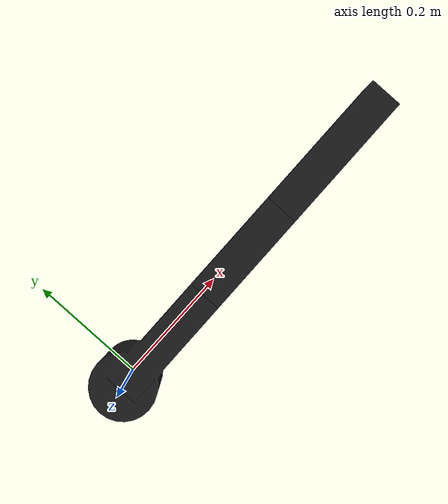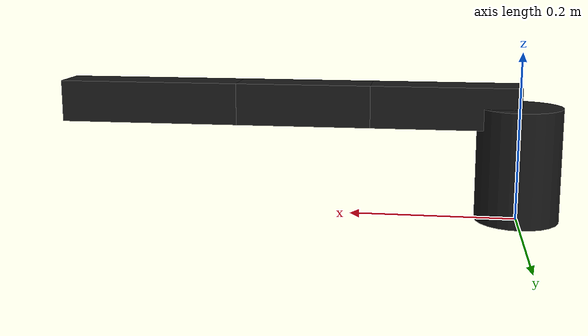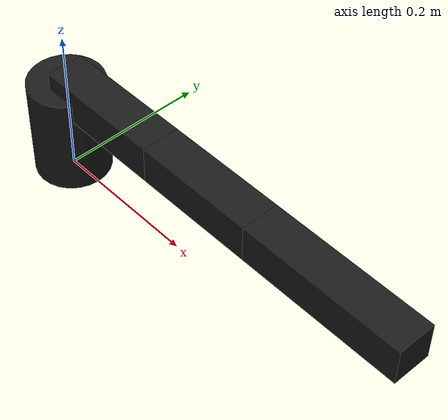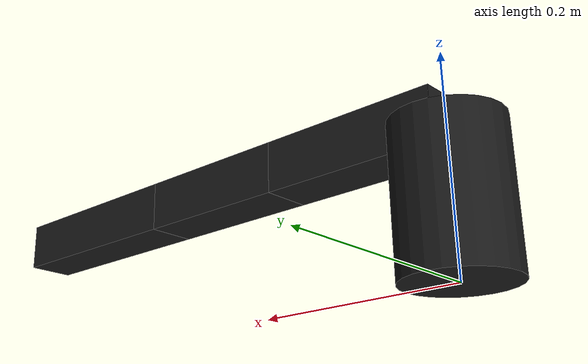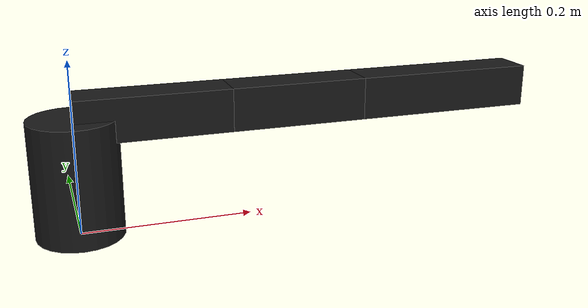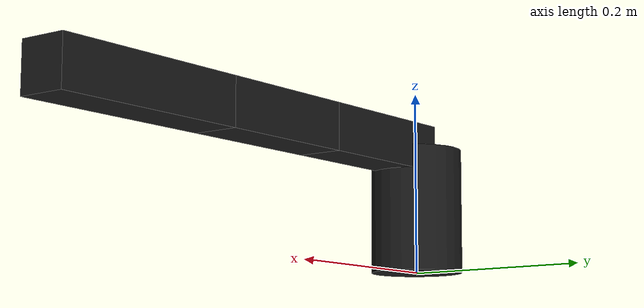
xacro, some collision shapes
<?xml version="1.0"?>
<robot xmlns:xacro="http://www.ros.org/wiki/xacro" name="rover_arm">

    <!-- Constants for robot dimensions -->
    <xacro:property name="PI" value="3.1415926535897931"/>

    <!-- Link lengths -->
    <xacro:property name="base_height" value="0.1364"/>
    <xacro:property name="link1_length" value="0.1752"/>
    <xacro:property name="link2_length" value="0.1608"/>
    <xacro:property name="link3_length" value="0.2182"/>

    <!-- Masses -->
    <xacro:property name="base_mass" value="0.650"/>
    <xacro:property name="link1_mass" value="0.220"/>
    <xacro:property name="link2_mass" value="0.200"/>
    <xacro:property name="link3_mass" value="0.250"/>
    <xacro:property name="end_effector_mass" value="0.140"/>

    <!-- Materials -->
    <material name="black">
        <color rgba="0.1 0.1 0.1 1"/>
    </material>

    <!-- Base Link -->
    <link name="base_link">
        <visual>
            <origin xyz="0 0 ${base_height/2}" rpy="0 0 0"/>
            <geometry>
                <mesh filename="file://$(find install)/rover_arm_description/share/rover_arm_description/urdf/obj/base.stl" scale="1 1 1"/>
            </geometry>
            <material name="black"/>
        </visual>
        <collision>
            <origin xyz="0 0 ${base_height/2}" rpy="0 0 0"/>
            <geometry>
                <cylinder radius="0.05" length="${base_height}"/>
            </geometry>
        </collision>
        <inertial>
            <origin xyz="0 0 ${base_height/2}" rpy="0 0 0"/>
            <mass value="${base_mass}"/>
            <inertia ixx="0.001" ixy="0.0" ixz="0.0" iyy="0.001" iyz="0.0" izz="0.001"/>
        </inertial>
    </link>

    <!-- Joint 1: Base rotation -->
    <joint name="joint1" type="revolute">
        <parent link="base_link"/>
        <child link="link1"/>
        <origin xyz="0 0 ${base_height}" rpy="0 0 0"/>
        <axis xyz="0 0 1"/>
        <limit lower="${-PI}" upper="${PI}" effort="100" velocity="1.0"/>
    </joint>

    <!-- Link 1 -->
    <link name="link1">
        <visual>
            <origin xyz="${link1_length/2} 0 0" rpy="0 0 0"/>
            <geometry>
                <box size="${link1_length} 0.05 0.05"/>
            </geometry>
            <material name="black"/>
        </visual>
        <collision>
            <origin xyz="${link1_length/2} 0 0" rpy="0 0 0"/>
            <geometry>
                <box size="${link1_length} 0.05 0.05"/>
            </geometry>
        </collision>
        <inertial>
            <origin xyz="${link1_length/2} 0 0" rpy="0 0 0"/>
            <mass value="${link1_mass}"/>
            <inertia ixx="0.001" ixy="0.0" ixz="0.0" iyy="0.001" iyz="0.0" izz="0.001"/>
        </inertial>
    </link>

    <!-- Joint 2 -->
    <joint name="joint2" type="revolute">
        <parent link="link1"/>
        <child link="link2"/>
        <origin xyz="${link1_length} 0 0" rpy="0 0 0"/>
        <axis xyz="0 1 0"/>
        <limit lower="${-PI/2}" upper="${PI/2}" effort="100" velocity="1.0"/>
    </joint>

    <!-- Link 2 -->
    <link name="link2">
        <visual>
            <origin xyz="${link2_length/2} 0 0" rpy="0 0 0"/>
            <geometry>
                <box size="${link2_length} 0.05 0.05"/>
            </geometry>
            <material name="black"/>
        </visual>
        <collision>
            <origin xyz="${link2_length/2} 0 0" rpy="0 0 0"/>
            <geometry>
                <box size="${link2_length} 0.05 0.05"/>
            </geometry>
        </collision>
        <inertial>
            <origin xyz="${link2_length/2} 0 0" rpy="0 0 0"/>
            <mass value="${link2_mass}"/>
            <inertia ixx="0.001" ixy="0.0" ixz="0.0" iyy="0.001" iyz="0.0" izz="0.001"/>
        </inertial>
    </link>

    <!-- Joint 3 -->
    <joint name="joint3" type="revolute">
        <parent link="link2"/>
        <child link="link3"/>
        <origin xyz="${link2_length} 0 0" rpy="0 0 0"/>
        <axis xyz="0 1 0"/>
        <limit lower="${-PI/2}" upper="${PI/2}" effort="100" velocity="1.0"/>
    </joint>

    <!-- Link 3 -->
    <link name="link3">
        <visual>
            <origin xyz="${link3_length/2} 0 0" rpy="0 0 0"/>
            <geometry>
                <box size="${link3_length} 0.05 0.05"/>
            </geometry>
            <material name="black"/>
        </visual>
        <collision>
            <origin xyz="${link3_length/2} 0 0" rpy="0 0 0"/>
            <geometry>
                <box size="${link3_length} 0.05 0.05"/>
            </geometry>
        </collision>
        <inertial>
            <origin xyz="${link3_length/2} 0 0" rpy="0 0 0"/>
            <mass value="${link3_mass}"/>
            <inertia ixx="0.001" ixy="0.0" ixz="0.0" iyy="0.001" iyz="0.0" izz="0.001"/>
        </inertial>
    </link>

    <!-- End effector frame -->
    <link name="end_effector">
        <inertial>
            <origin xyz="0 0 0" rpy="0 0 0"/>
            <mass value="${end_effector_mass}"/>
            <inertia ixx="0.001" ixy="0.0" ixz="0.0" iyy="0.001" iyz="0.0" izz="0.001"/>
        </inertial>
    </link>

    <joint name="end_effector_joint" type="fixed">
        <parent link="link3"/>
        <child link="end_effector"/>
        <origin xyz="${link3_length} 0 0" rpy="0 0 0"/>
    </joint>

    <!-- Gazebo required transmission elements -->
    <transmission name="joint1_trans">
        <type>transmission_interface/SimpleTransmission</type>
        <joint name="joint1">
            <hardwareInterface>hardware_interface/PositionJointInterface</hardwareInterface>
        </joint>
        <actuator name="joint1_motor">
            <mechanicalReduction>1</mechanicalReduction>
        </actuator>
    </transmission>

    <transmission name="joint2_trans">
        <type>transmission_interface/SimpleTransmission</type>
        <joint name="joint2">
            <hardwareInterface>hardware_interface/PositionJointInterface</hardwareInterface>
        </joint>
        <actuator name="joint2_motor">
            <mechanicalReduction>1</mechanicalReduction>
        </actuator>
    </transmission>

    <transmission name="joint3_trans">
        <type>transmission_interface/SimpleTransmission</type>
        <joint name="joint3">
            <hardwareInterface>hardware_interface/PositionJointInterface</hardwareInterface>
        </joint>
        <actuator name="joint3_motor">
            <mechanicalReduction>1</mechanicalReduction>
        </actuator>
    </transmission>

</robot>
